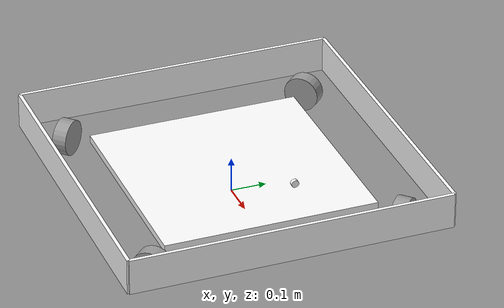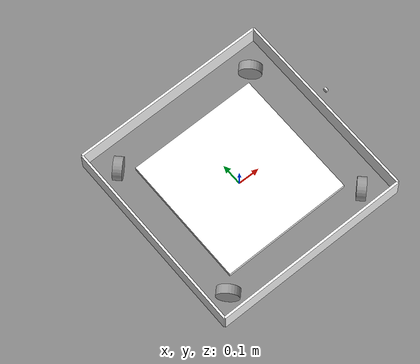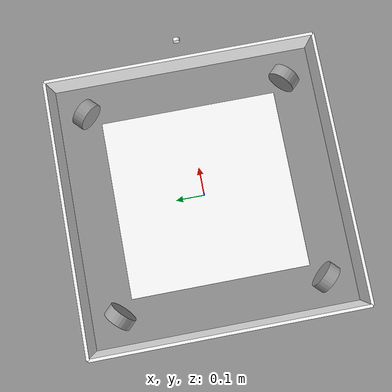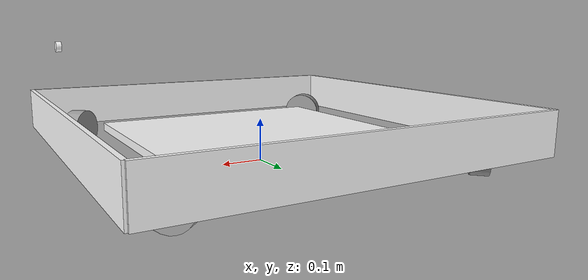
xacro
<?xml version="1.0"?>
<robot name="sample_robot" xmlns:xacro="http://ros.org/wiki/xacro">
  <xacro:arg name="prefix" default="" />
  <xacro:arg name="use_sim" default="false" />

  <xacro:arg name="robot_name" default="sample_robot"/>

  <xacro:include filename="$(find sample_robot_description)/urdf/common.xacro"/>
  <xacro:include filename="$(find sample_robot_description)/urdf/base/base.urdf.xacro"/>
  <xacro:include filename="$(find sample_robot_description)/urdf/wheel/wheel_100mm_light.urdf.xacro"/>

  <xacro:include filename="$(find sample_robot_description)/gazebo/sample_robot.gazebo.xacro"/>
  <xacro:include filename="$(find sample_robot_description)/ros2_control/sample_robot.ros2_control.xacro"/>

  <!-- =============== Link & Joint =============== -->
  <!-- Base -->
  <link name="base_link"/>
  <xacro:base_v0 parent="base_link">
	<origin xyz="0 0 0.06"/>
  </xacro:base_v0>

  <!-- Wheel -->
  <!-- Wheel0 -->
  <xacro:omni_wheel prefix="wheel0" parent="base_link">
	  <origin xyz="0.35 0.35 0.05" rpy="0 ${pi/2} ${pi/4}"/>
  </xacro:omni_wheel>

  <!-- Wheel1 -->
  <xacro:omni_wheel prefix="wheel1" parent="base_link">
	  <origin xyz="-0.35 0.35 0.05" rpy="0 ${pi/2} ${pi*3/4}"/>
  </xacro:omni_wheel>

  <!-- Wheel3 -->
  <xacro:omni_wheel prefix="wheel2" parent="base_link">
	  <origin xyz="-0.35 -0.35 0.05" rpy="0 ${pi/2} ${-pi*3/4}"/>
  </xacro:omni_wheel>

  <!-- Wheel2 -->
  <xacro:omni_wheel prefix="wheel3" parent="base_link">
	  <origin xyz="0.35 -0.35 0.05" rpy="0 ${pi/2} ${-pi/4}"/>
  </xacro:omni_wheel>

  <!-- Base -->
  <xacro:base_gazebo_v0/>

  <!-- Wheel -->
  <!--xacro:wheel_gazebo_control_v0 rate="25"/-->

  <joint name="camera_joint" type="fixed">
    <parent link="base_link"/>
    <child  link="camera_link"/>
    <origin xyz="0.45 0 0.28" rpy="0 0 0"/>
  </joint>
  <link name="camera_link">
    <visual>
      <origin xyz="0 0 0" rpy="0 -1.57 0" />
      <geometry>
        <cylinder radius="0.01" length="0.01" />
      </geometry>
      <material name="white" />
    </visual>
  </link>

  <xacro:sample_robot_gazebo prefix=""/>
  <xacro:sample_robot_ros2_control name="sample_robot" use_sim="$(arg use_sim)"/>

</robot>

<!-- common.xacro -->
<robot xmlns:xacro="http://ros.org/wiki/xacro">
  <xacro:macro name="pi" params="3.1415926535897931" />
  <material name="gray">
    <color rgba="0.6 0.6 0.6 1.0"/>
    <isaac_rigid_body static_friction="1.0" dynamic_friction="1.0"/>
  </material>
  <material name="black">
    <color rgba="0 0 0 1.0"/>
    <isaac_rigid_body static_friction="1.0" dynamic_friction="1.0"/>
  </material>
  <material name="white">
    <color rgba="1.0 1.0 1.0 1.0"/>
    <isaac_rigid_body static_friction="1.0" dynamic_friction="1.0"/>
  </material>
  <material name="shooter_unit">
    <color rgba="0.4 0.4 0.4 1.0"/>
    <isaac_rigid_body static_friction="0.2" dynamic_friction="0.0"/>
  </material>
  <material name="red">
    <color rgba="1.0 0 0 1.0"/>
    <isaac_rigid_body static_friction="1.0" dynamic_friction="1.0"/>
  </material>
  <material name="light_red">
    <color rgba="1.0 0.5 0.5 0.6"/>
    <isaac_rigid_body static_friction="1.0" dynamic_friction="1.0"/>
  </material>
  <material name="orange">
    <color rgba="1.0 0.5 0.0 1.0"/>
    <isaac_rigid_body static_friction="1.0" dynamic_friction="1.0"/>
  </material>
  <material name="yellow">
    <color rgba="1.0 1.0 0.0 1.0"/>
    <isaac_rigid_body static_friction="1.0" dynamic_friction="1.0"/>
  </material>
  <material name="yellow_green">
    <color rgba="0.5 1.0 0.0 1.0"/>
    <isaac_rigid_body static_friction="1.0" dynamic_friction="1.0"/>
  </material>

  <material name="blue">
    <color rgba="0.0 0.0 1.0 1.0"/>
    <isaac_rigid_body static_friction="1.0" dynamic_friction="1.0"/>
  </material>
  <material name="light_blue">
    <color rgba="0.5 0.5 1.0 0.6"/>
    <isaac_rigid_body static_friction="1.0" dynamic_friction="1.0"/>
  </material>
  <material name="purple">
    <color rgba="1.0 0.0 1.0 1.0"/>
    <isaac_rigid_body static_friction="1.0" dynamic_friction="1.0"/>
  </material>
  <material name="blue_green">
    <color rgba="0.0 1.0 0.5 1.0"/>
    <isaac_rigid_body static_friction="1.0" dynamic_friction="1.0"/>
  </material>

</robot>

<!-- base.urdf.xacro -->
<robot xmlns:xacro="http://ros.org/wiki/xacro">

  <xacro:include filename="$(find sample_robot_description)/urdf/base/base.gazebo.xacro"/>

  <xacro:macro name="base_v0" params="parent *joint_origin">
        <joint name="base_frame_link_joint" type="fixed">
          <xacro:insert_block name="joint_origin"/>
          <parent link="${parent}"/>
          <child link="base_frame_link"/>
        </joint>

        <link name="base_frame_link">
          <visual>
                <geometry>
                  <box size="0.6 0.6 0.02" />
                </geometry>
                <material name="white"/>
          </visual>
          <collision>
                <geometry>
                  <box size="0.6 0.6 0.02" />
                </geometry>
          </collision>
          <inertial>
                <origin xyz="0 0 0"/>
                <mass value="20.0"/>
                <inertia ixx="5" ixy="0" ixz="0"
                                 iyy="5" iyz="0"
                                 izz="5" />
          </inertial>
        </link>

        <joint name="bumper1_joint" type="fixed">
          <parent link="${parent}"/>
          <child  link="bumper1_link"/>
          <origin xyz="-0.45 0.0 0.10" rpy="0 0 0"/>
        </joint>

        <link name="bumper1_link">
          <visual>
            <geometry>
              <box size="0.01 0.9 0.10" />
            </geometry>
            <material name="white"/>
          </visual>
          <collision>
            <geometry>
              <box size="0.01 0.9 0.10" />
            </geometry>
          </collision>
          <inertial>
            <origin xyz="0 0 0"/>
            <mass value="0.4"/>
            <inertia ixx="0.1" ixy="0" ixz="0"
                               iyy="0.1" iyz="0"
                                         izz="0.1" />
          </inertial>
        </link>

        <joint name="bumper2_joint" type="fixed">
          <parent link="${parent}"/>
          <child  link="bumper2_link"/>
          <origin xyz="0.0 0.45 0.10" rpy="0 0 0"/>
        </joint>

        <link name="bumper2_link">
          <visual>
            <geometry>
              <box size="0.9 0.01 0.10" />
            </geometry>
            <material name="white"/>
          </visual>
          <collision>
            <geometry>
              <box size="0.9 0.01 0.10" />
            </geometry>
          </collision>
          <inertial>
            <origin xyz="0 0 0"/>
            <mass value="0.4"/>
            <inertia ixx="0.1" ixy="0" ixz="0"
                               iyy="0.1" iyz="0"
                                         izz="0.1" />
          </inertial>
        </link>

        <joint name="bumper3_joint" type="fixed">
          <parent link="${parent}"/>
          <child  link="bumper3_link"/>
          <origin xyz="0.0 -0.45 0.10" rpy="0 0 0"/>
        </joint>

        <link name="bumper3_link">
          <visual>
            <geometry>
              <box size="0.9 0.01 0.10" />
            </geometry>
            <material name="white"/>
          </visual>
          <collision>
            <geometry>
              <box size="0.9 0.01 0.10" />
            </geometry>
          </collision>
          <inertial>
            <origin xyz="0 0 0"/>
            <mass value="0.4"/>
            <inertia ixx="0.1" ixy="0" ixz="0"
                               iyy="0.1" iyz="0"
                                         izz="0.1" />
          </inertial>
        </link>

        <joint name="bumper4_joint" type="fixed">
          <parent link="${parent}"/>
          <child  link="bumper4_link"/>
          <origin xyz="0.45 0.0 0.10" rpy="0 0 0"/>
        </joint>

        <link name="bumper4_link">
          <visual>
            <geometry>
              <box size="0.01 0.9 0.10" />
            </geometry>
            <material name="white"/>
          </visual>
          <collision>
            <geometry>
              <box size="0.01 0.9 0.10" />
            </geometry>
          </collision>
          <inertial>
            <origin xyz="0 0 0"/>
            <mass value="0.4"/>
            <inertia ixx="0.1" ixy="0" ixz="0"
                               iyy="0.1" iyz="0"
                                         izz="0.1" />
          </inertial>
        </link>

  </xacro:macro>

</robot>

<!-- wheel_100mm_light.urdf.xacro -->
<robot xmlns:xacro="http://ros.org/wiki/xacro">

  <xacro:macro name="omni_wheel" params="prefix parent *joint_origin">
  <joint name="${prefix}_shaft_joint" type="continuous">
    <parent link="${parent}"/>
    <child  link="${prefix}_housing_link"/>
    <xacro:insert_block name="joint_origin"/>
    <axis xyz="0 0 1"/>
    <dynamics damping="0.7"/>
  </joint>
  <transmission name="${prefix}_shaft_trans">
    <type>transmission_interface/SimpleTransmission</type>
    <joint name="${prefix}_shaft_joint">
      <hardwareInterface>hardware_interface/VelocityJointInterface</hardwareInterface>
    </joint>
    <actuator name="${prefix}_shaft_motor">
      <hardwareInterface>hardware_interface/VelocityJointInterface</hardwareInterface>
      <mechanicalReduction>1</mechanicalReduction>
    </actuator>
  </transmission>

    <link name="${prefix}_housing_link">
      <visual>
        <geometry>
          <cylinder length="0.040" radius="0.05" />
        </geometry>
        <origin xyz="0 0 0" rpy="0 0 0"/>
        <material name="gray"/>
      </visual>
      <collision>
        <geometry>
          <cylinder length="0.040" radius="0.05" />
        </geometry>
        <origin xyz="0 0 0" rpy="0 0 0"/>
        <material name="gray"/>
      </collision>

      <inertial>
        <mass value="1.288"/>
        <inertia ixx="0.00235" ixy="0" ixz="0" iyy="0.00235" iyz="0" izz="0.00004"/>
      </inertial>
    </link>
    <gazebo reference="${prefix}_housing_link">
      <material>Gazebo/Gray</material>
      <mu1>0.8</mu1>
      <mu2>0.05</mu2>
      <fdir1>0 1.0 0</fdir1>
      <kp value="30000000.0" />
      <kd value="50000000.0" />
    </gazebo>

  </xacro:macro>
</robot>
